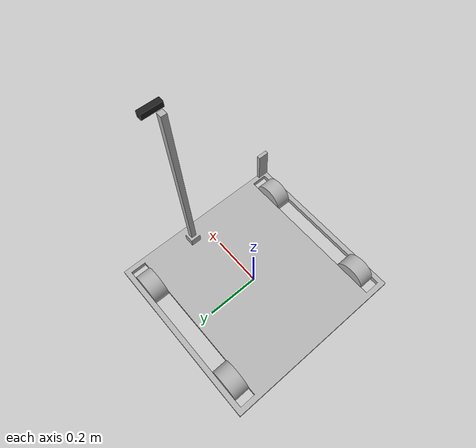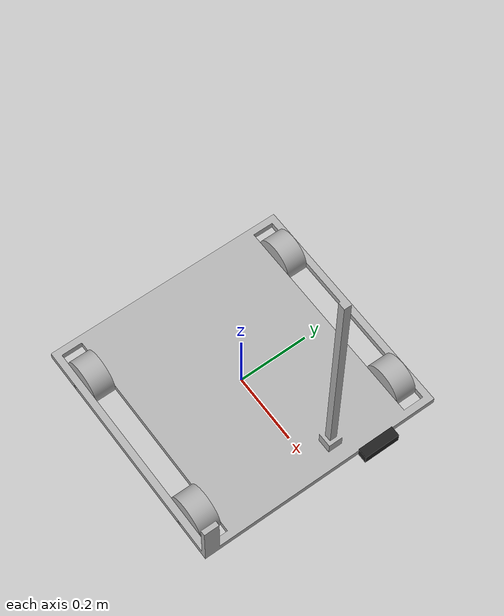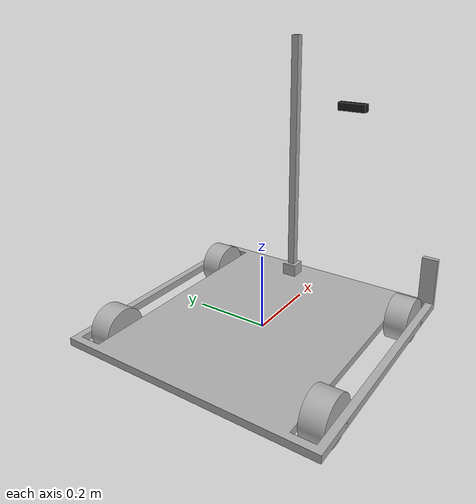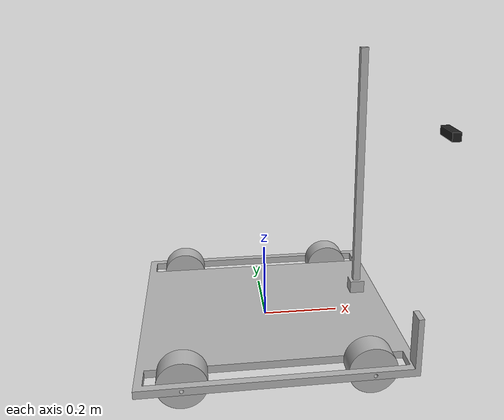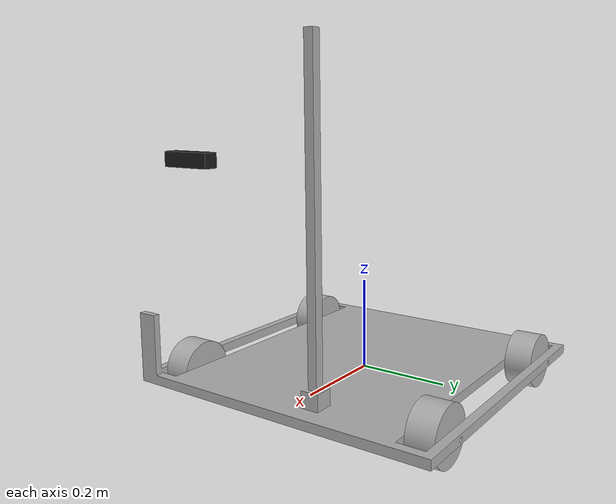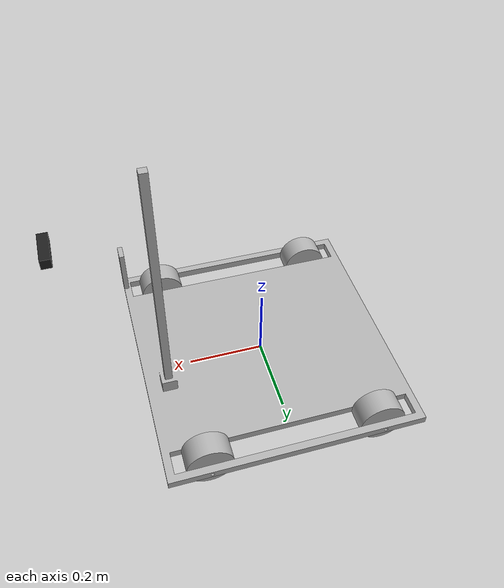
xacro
<?xml version="1.0" ?>
<robot name="R2" xmlns:xacro="http://www.ros.org/wiki/xacro">

<!-- xacro:include filename="$(find ros2_livox_simulation)/urdf/mid360.xacro" / -->
<xacro:include filename="$(find rc2026_field)/urdf/materials.xacro" />
<xacro:include filename="$(find rc2026_field)/urdf/R2.trans" />
<xacro:include filename="$(find rc2026_field)/urdf/R2.gazebo" />
<link name="base_link">
  <inertial>
    <origin xyz="0.013939690526257072 -0.000368559794553403 0.02322444965726985" rpy="0 0 0"/>
    <mass value="64.00449387778522"/>
    <inertia ixx="2.356025" iyy="2.917698" izz="4.533519" ixy="0.016778" iyz="-0.041196" ixz="-0.222567"/>
  </inertial>
  <visual>
    <origin xyz="0 0 0" rpy="0 0 0"/>
    <geometry>
      <mesh filename="file://$(find rc2026_field)/meshes/base_link.stl" scale="0.001 0.001 0.001"/>
    </geometry>
    <material name="silver"/>
  </visual>
  <collision>
    <origin xyz="0 0 0" rpy="0 0 0"/>
    <geometry>
      <mesh filename="file://$(find rc2026_field)/meshes/base_link.stl" scale="0.001 0.001 0.001"/>
    </geometry>
  </collision>
</link>

<link name="wheel_1_1">
  <inertial>
    <origin xyz="3.6637359812630166e-15 -0.02999999999999997 -5.204170427930421e-18" rpy="0 0 0"/>
    <mass value="5.289892249930832"/>
    <inertia ixx="0.006381" iyy="0.009588" izz="0.006381" ixy="-0.0" iyz="0.0" ixz="-0.0"/>
  </inertial>
  <visual>
    <origin xyz="-0.225 0.27 -0.01" rpy="0 0 0"/>
    <geometry>
      <mesh filename="file://$(find rc2026_field)/meshes/wheel_1_1.stl" scale="0.001 0.001 0.001"/>
    </geometry>
    <material name="silver"/>
  </visual>
  <collision>
    <origin xyz="0 0 0" rpy="1.570796 0 0"/>
    <geometry>
      <cylinder radius="0.06" length="0.06"/>
    </geometry>
  </collision>
</link>

<link name="wheel_2_1">
  <inertial>
    <origin xyz="3.4416913763379853e-15 -0.02999999999999986 -1.9081958235744878e-17" rpy="0 0 0"/>
    <mass value="5.289892249930832"/>
    <inertia ixx="0.006381" iyy="0.009588" izz="0.006381" ixy="-0.0" iyz="0.0" ixz="0.0"/>
  </inertial>
  <visual>
    <origin xyz="0.225 0.27 -0.01" rpy="0 0 0"/>
    <geometry>
      <mesh filename="file://$(find rc2026_field)/meshes/wheel_2_1.stl" scale="0.001 0.001 0.001"/>
    </geometry>
    <material name="silver"/>
  </visual>
  <collision>
    <origin xyz="0 0 0" rpy="1.570796 0 0"/>
    <geometry>
      <cylinder radius="0.06" length="0.06"/>
    </geometry>
  </collision>
</link>

<link name="wheel_3_1">
  <inertial>
    <origin xyz="3.3861802251067274e-15 0.030000000000000027 -1.9081958235744878e-17" rpy="0 0 0"/>
    <mass value="5.289892249930832"/>
    <inertia ixx="0.006381" iyy="0.009588" izz="0.006381" ixy="-0.0" iyz="-0.0" ixz="0.0"/>
  </inertial>
  <visual>
    <origin xyz="0.225 -0.27 -0.01" rpy="0 0 0"/>
    <geometry>
      <mesh filename="file://$(find rc2026_field)/meshes/wheel_3_1.stl" scale="0.001 0.001 0.001"/>
    </geometry>
    <material name="silver"/>
  </visual>
  <collision>
    <origin xyz="0 0 0" rpy="1.570796 0 0"/>
    <geometry>
      <cylinder radius="0.06" length="0.06"/>
    </geometry>
  </collision>
</link>

<link name="wheel_4_1">
  <inertial>
    <origin xyz="3.6637359812630166e-15 0.02999999999999997 -8.673617379884035e-18" rpy="0 0 0"/>
    <mass value="5.289892249930832"/>
    <inertia ixx="0.006381" iyy="0.009588" izz="0.006381" ixy="0.0" iyz="0.0" ixz="-0.0"/>
  </inertial>
  <visual>
    <origin xyz="-0.225 -0.27 -0.01" rpy="0 0 0"/>
    <geometry>
      <mesh filename="file://$(find rc2026_field)/meshes/wheel_4_1.stl" scale="0.001 0.001 0.001"/>
    </geometry>
    <material name="silver"/>
  </visual>
  <collision>
    <origin xyz="0 0 0" rpy="1.570796 0 0"/>
    <geometry>
      <cylinder radius="0.06" length="0.06"/>
    </geometry>
  </collision>
</link>

<link name="camera_link">
  <visual>
    <origin xyz="0 0 0" rpy="0 0 0" />
    <geometry>
      <box size="0.025 0.09 0.025" />
    </geometry>
    <material name="black" />
  </visual>
  <collision>
    <origin xyz="0 0 0" rpy="0 0 0" />
    <geometry>
      <box size="0.025 0.09 0.025" />
    </geometry>
  </collision>
  <inertial>
    <mass value="0.072" />
    <inertia ixx="0.001" ixy="0" ixz="0" iyy="0.001" iyz="0" izz="0.001" />
  </inertial>
</link>

<joint name="camera_joint" type="fixed">
  <parent link="base_link" />
  <child link="camera_link" />
  <origin xyz="0.5 0 0.50" rpy="0 0 0" />
</joint>

<joint name="spin_1" type="fixed">
  <origin xyz="0.225 -0.27 0.01" rpy="0 0 0"/>
  <parent link="base_link"/>
  <child link="wheel_1_1"/>
</joint>

<joint name="spin_2" type="fixed">
  <origin xyz="-0.225 -0.27 0.01" rpy="0 0 0"/>
  <parent link="base_link"/>
  <child link="wheel_2_1"/>
</joint>
<joint name="spin_3" type="fixed">
  <origin xyz="-0.225 0.27 0.01" rpy="0 0 0"/>
  <parent link="base_link"/>
  <child link="wheel_3_1"/>
</joint>
<joint name="spin_4" type="fixed">
  <origin xyz="0.225 0.27 0.01" rpy="0 0 0"/>
  <parent link="base_link"/>
  <child link="wheel_4_1"/>
</joint>

</robot>

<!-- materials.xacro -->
<robot name="R2" xmlns:xacro="http://www.ros.org/wiki/xacro" >

<material name="silver">
  <color rgba="0.700 0.700 0.700 1.000"/>
</material>

</robot>

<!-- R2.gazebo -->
<robot name="R2" xmlns:xacro="http://www.ros.org/wiki/xacro" >

<xacro:property name="body_color" value="Gazebo/Silver" />

<gazebo>
  <plugin name="object_controller" filename="libgazebo_ros_planar_move.so">
    <ros>
      <argument>cmd_vel:=cmd_vel</argument>
      <argument>odom:=odom</argument>
    </ros>
    <update_rate>100</update_rate>
    <publish_rate>100</publish_rate>
    <robot_base_frame>base_link</robot_base_frame>
    <publish_odom>false</publish_odom>
    <publish_odom_tf>false</publish_odom_tf>
    <odometry_frame>odom</odometry_frame>
    <covariance_x>0.0001</covariance_x>
    <covariance_y>0.0001</covariance_y>
    <covariance_yaw>0.01</covariance_yaw>
  </plugin>
</gazebo>
<gazebo reference="base_link">
  <material>${body_color}</material>
  <mu1>0.2</mu1>
  <mu2>0.2</mu2>

  <kp>100000000.0</kp>
  <kd>10.0</kd>

  <self_collide>false</self_collide>
  <gravity>true</gravity>
</gazebo>

<gazebo reference="wheel_1_1">
  <material>${body_color}</material>
  <mu1>0.0</mu1>
  <mu2>0.0</mu2>
  <kp>100000000.0</kp>
  <kd>10.0</kd>
  <minDepth>0.001</minDepth>
  <maxVel>0.1</maxVel>
  <self_collide>false</self_collide>
</gazebo>

<gazebo reference="wheel_2_1">
  <material>${body_color}</material>
  <mu1>0.0</mu1>
  <mu2>0.0</mu2>
  <kp>100000000.0</kp>
  <kd>10.0</kd>
  <minDepth>0.001</minDepth>
  <maxVel>0.1</maxVel>
  <self_collide>false</self_collide>
</gazebo>

<gazebo reference="wheel_3_1">
  <material>${body_color}</material>
  <mu1>0.0</mu1>
  <mu2>0.0</mu2>
  <kp>100000000.0</kp>
  <kd>10.0</kd>
  <minDepth>0.001</minDepth>
  <maxVel>0.1</maxVel>
  <self_collide>false</self_collide>
</gazebo>

<gazebo reference="wheel_4_1">
  <material>${body_color}</material>
  <mu1>0.0</mu1>
  <mu2>0.0</mu2>
  <kp>100000000.0</kp>
  <kd>10.0</kd>
  <minDepth>0.001</minDepth>
  <maxVel>0.1</maxVel>
  <self_collide>false</self_collide>
</gazebo>

<gazebo reference="rise_link_1">
  <material>${body_color}</material>
  <mu1>0.2</mu1>
  <mu2>0.2</mu2>
  <self_collide>false</self_collide>
</gazebo>

<gazebo reference="big_arm_1">
  <material>${body_color}</material>
  <mu1>0.2</mu1>
  <mu2>0.2</mu2>
  <self_collide>false</self_collide>
</gazebo>

<gazebo reference="small_arm_1">
  <material>${body_color}</material>
  <mu1>0.2</mu1>
  <mu2>0.2</mu2>
  <self_collide>false</self_collide>
</gazebo>

<gazebo reference="head_link_1">
  <material>${body_color}</material>
  <mu1>0.2</mu1>
  <mu2>0.2</mu2>
  <self_collide>false</self_collide>
</gazebo>

<gazebo reference="y_move_1">
  <material>${body_color}</material>
  <mu1>0.2</mu1>
  <mu2>0.2</mu2>
  <self_collide>false</self_collide>
</gazebo>

<gazebo reference="x_move_1">
  <material>${body_color}</material>
  <mu1>0.2</mu1>
  <mu2>0.2</mu2>
  <self_collide>false</self_collide>
</gazebo>

<gazebo reference="mid360_1">
  <material>${body_color}</material>
  <mu1>0.2</mu1>
  <mu2>0.2</mu2>
  <self_collide>false</self_collide>
</gazebo>

<gazebo reference="camera_link">
  <material>Gazebo/Black</material>
  <sensor name="camera" type="camera">
    <update_rate>30</update_rate>
    <always_on>1</always_on>
    <visualize>true</visualize>
    <camera>
      <horizontal_fov>1.047</horizontal_fov>
      <image>
        <width>640</width>
        <height>480</height>
        <format>R8G8B8</format>
      </image>
      <clip>
        <near>0.1</near>
        <far>10.0</far>
      </clip>
    </camera>
    <plugin name="camera_controller" filename="libgazebo_ros_camera.so">
      <alwaysOn>true</alwaysOn>
      <updateRate>60.0</updateRate>
      <cameraName>camera</cameraName>
      <imageTopicName>image_raw</imageTopicName>
      <cameraInfoTopicName>camera_info</cameraInfoTopicName>
      <frameName>camera_link</frameName>
      <hackBaseline>0.07</hackBaseline>
      <distortionK1>0.0</distortionK1>
      <distortionK2>0.0</distortionK2>
      <distortionK3>0.0</distortionK3>
      <distortionT1>0.0</distortionT1>
      <distortionT2>0.0</distortionT2>
    </plugin>
  </sensor>
</gazebo>

<gazebo reference="livox">
  <sensor name="imu_sensor" type="imu">
    <always_on>true</always_on>
    <update_rate>200</update_rate>
    <visualize>true</visualize>
    <topic>livox/imu</topic>

    <plugin filename="libgazebo_ros_imu_sensor.so" name="imu_plugin">
      <ros>
        <remapping>~/out:=/livox/imu</remapping>
      </ros>
      <frame_name>livox</frame_name>
      <initial_orientation_as_reference>false</initial_orientation_as_reference>
    </plugin>

    <imu>
      <angular_velocity>
        <x><noise type="gaussian"><mean>0.0</mean><stddev>0.0</stddev></noise></x>
        <y><noise type="gaussian"><mean>0.0</mean><stddev>0.0</stddev></noise></y>
        <z><noise type="gaussian"><mean>0.0</mean><stddev>0.0</stddev></noise></z>
      </angular_velocity>
      <linear_acceleration>
        <x><noise type="gaussian"><mean>0.0</mean><stddev>0.0</stddev></noise></x>
        <y><noise type="gaussian"><mean>0.0</mean><stddev>0.0</stddev></noise></y>
        <z><noise type="gaussian"><mean>0.0</mean><stddev>0.0</stddev></noise></z>
      </linear_acceleration>
    </imu>
  </sensor>
</gazebo>

</robot>
